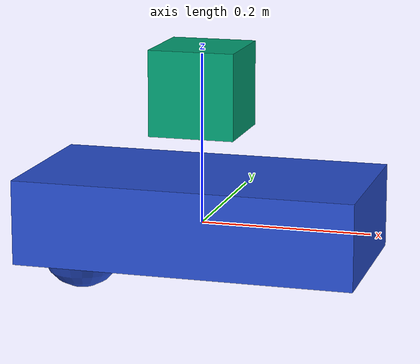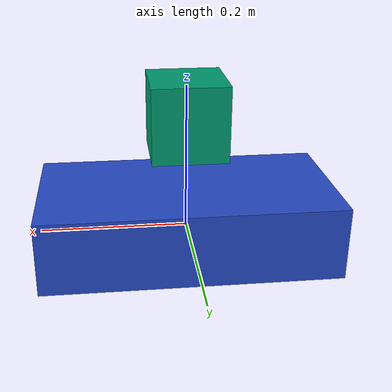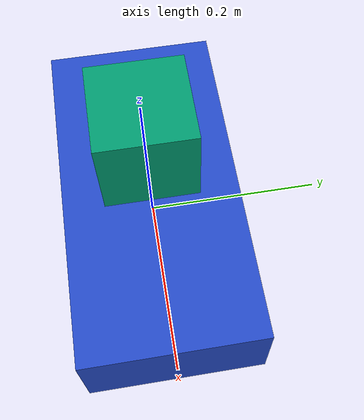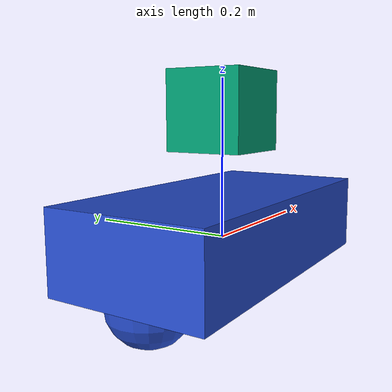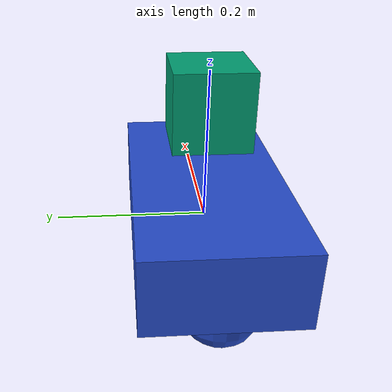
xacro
<?xml version='1.0'?>

<robot name="myrobot" xmlns:xacro="http://www.ros.org/wiki/xacro">

  <xacro:include filename="$(find robot_navigation)/urdf/custom_robot/MYBOTLASER.gazebo" />
  <xacro:include filename="$(find robot_navigation)/urdf/custom_robot/materials.xacro" />
  <xacro:include filename="$(find robot_navigation)/urdf/custom_robot/macros.xacro" />

  <link name="base_footprint"/>

  <joint name="base_joint" type="fixed">
    <parent link="base_footprint"/>
    <child link="base_link"/>
    <origin xyz="0.0 0.0 0.010" rpy="0 0 0"/>
  </joint>

  <link name='base_link'>
    <pose>0 0 0.1 0 0 0</pose>

    <inertial>
      <mass value="10.0"/>
      <origin xyz="0.0 0 0.1" rpy=" 0 0 0"/>
      <inertia
          ixx="0.416" ixy="0" ixz="0"
          iyy="0.142" iyz="0"
          izz="0.167"
      />
    </inertial>

    <collision name='collision'>
      <geometry>
        <box size=".4 .2 .1"/>
      </geometry>
    </collision>

    <visual name='base_link'>
      <origin xyz="0 0 0" rpy=" 0 0 0"/>
      <geometry>
        <box size=".4 .2 .1"/>
      </geometry>
    </visual>

    <collision name='caster_collision'>
      <origin xyz="-0.15 0 -0.05" rpy=" 0 0 0"/>
      <geometry>
        <sphere radius="0.05"/>
      </geometry>
      <surface>
        <friction>
          <ode>
            <mu>0</mu>
            <mu2>0</mu2>
            <slip1>1.0</slip1>
            <slip2>1.0</slip2>
          </ode>
        </friction>
      </surface>
    </collision>

    <visual name='caster_visual'>
      <origin xyz="-0.15 0 -0.05" rpy=" 0 0 0"/>
      <geometry>
        <sphere radius="0.05"/>
      </geometry>
    </visual>
  </link>

<joint name="sensor_joint" type="fixed">
    <axis xyz="0 1 0" />
    <origin xyz="0 0 0.15" rpy="0 0 0"/>
    <parent link="base_link"/>
    <child link="laser"/>
  </joint>

  <!-- Hokuyo Laser -->
  <link name="laser">
    <collision>
      <origin xyz="0 0 0" rpy="0 0 0"/>
      <geometry>
    <box size="0.1 0.1 0.1"/>
      </geometry>
    </collision>

    <visual>
      <origin xyz="0 0 0" rpy="0 0 0"/>
      <geometry>
        <box size="0.1 0.1 0.1"/>
      </geometry>
    </visual>

    <inertial>
      <mass value="1e-5" />
      <origin xyz="0 0 0" rpy="0 0 0"/>
      <inertia ixx="1e-6" ixy="0" ixz="0" iyy="1e-6" iyz="0" izz="1e-6" />
    </inertial>
  </link>

</robot>
